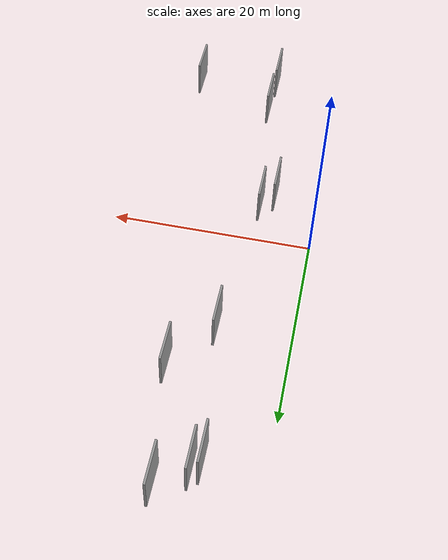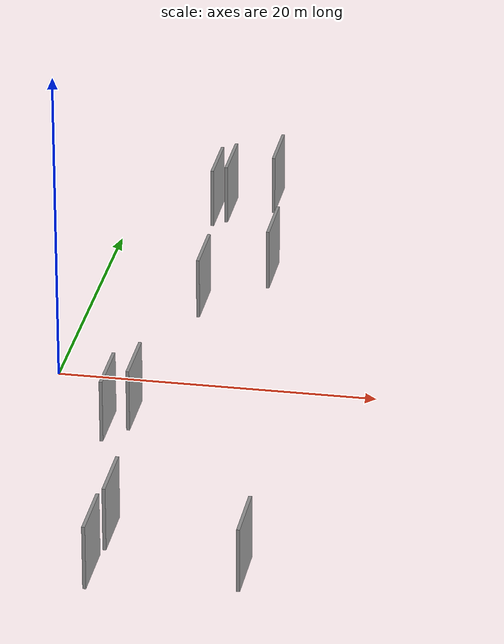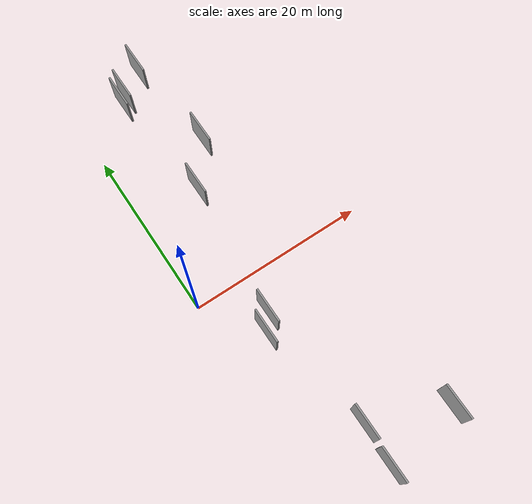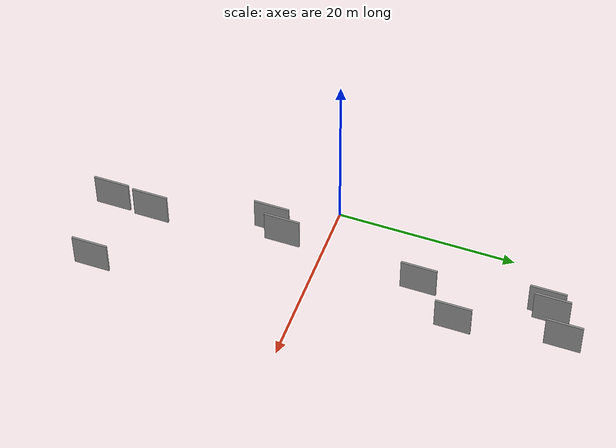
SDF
<sdf version="1.6">
 <world name="default">
  <scene>
   <sky><clouds><speed>12</speed></clouds></sky>
   <ambient>0.4 0.4 0.4 1</ambient>
   <background>0.7 0.7 0.7 1</background>
   <shadows>1</shadows>
  </scene>
  <gravity>0 0 -9.8066</gravity>
  <magnetic_field>6e-06 2.3e-05 -4.2e-05</magnetic_field>
  <physics default="0" name="default_physics" type="ode">
   <ode>
    <solver>
     <type>quick</type>
     <iters>10</iters>
     <sor>1.0</sor>
     <use_dynamic_moi_rescaling>0</use_dynamic_moi_rescaling>
    </solver>
    <constraints>
     <cfm>0</cfm>
     <erp>0.2</erp>
     <contact_max_correcting_vel>100</contact_max_correcting_vel>
     <contact_surface_layer>0.001</contact_surface_layer>
    </constraints>
   </ode>
   <max_step_size>0.004</max_step_size>
   <real_time_factor>1</real_time_factor>
   <real_time_update_rate>250</real_time_update_rate>
  </physics>
  <light name="sun" type="directional">
   <pose>0 0 10 0 0 0</pose>
   <diffuse>0.8 0.8 0.8 1</diffuse>
   <specular>0.2 0.2 0.2 1</specular>
   <attenuation>
    <range>1000</range>
    <constant>0.9</constant>
    <linear>0.01</linear>
    <quadratic>0.001</quadratic>
   </attenuation>
   <direction>-0.5 0.1 -0.9</direction>
  </light>
  <model name="grey_wall_1">
   <static>1</static>
   <pose>15.7030 -22.7188 0.0 0.000000 0.000000 1.570796</pose>
   <link name="link">
    <pose>0 0 2.00 0 0 0</pose>
    <collision name="collision"><geometry><box><size>4.00 0.2 4.00</size></box></geometry></collision>
    <visual name="visual">
     <cast_shadows>0</cast_shadows>
     <geometry><box><size>4.00 0.2 4.00</size></box></geometry>
     <material>
      <script>
       <uri>model://grey_wall/materials/scripts</uri>
       <uri>model://grey_wall/materials/textures</uri>
       <name>vrc/grey_wall</name>
      </script>
     </material>
    </visual>
   </link>
  </model>
  <model name="grey_wall_2">
   <static>1</static>
   <pose>5.5386 25.0089 0.0 0.000000 0.000000 1.570796</pose>
   <link name="link">
    <pose>0 0 2.00 0 0 0</pose>
    <collision name="collision"><geometry><box><size>4.00 0.2 4.00</size></box></geometry></collision>
    <visual name="visual">
     <cast_shadows>0</cast_shadows>
     <geometry><box><size>4.00 0.2 4.00</size></box></geometry>
     <material>
      <script>
       <uri>model://grey_wall/materials/scripts</uri>
       <uri>model://grey_wall/materials/textures</uri>
       <name>vrc/grey_wall</name>
      </script>
     </material>
    </visual>
   </link>
  </model>
  <model name="grey_wall_3">
   <static>1</static>
   <pose>4.4119 -6.2699 0.0 0.000000 0.000000 1.570796</pose>
   <link name="link">
    <pose>0 0 2.00 0 0 0</pose>
    <collision name="collision"><geometry><box><size>4.00 0.2 4.00</size></box></geometry></collision>
    <visual name="visual">
     <cast_shadows>0</cast_shadows>
     <geometry><box><size>4.00 0.2 4.00</size></box></geometry>
     <material>
      <script>
       <uri>model://grey_wall/materials/scripts</uri>
       <uri>model://grey_wall/materials/textures</uri>
       <name>vrc/grey_wall</name>
      </script>
     </material>
    </visual>
   </link>
  </model>
  <model name="grey_wall_4">
   <static>1</static>
   <pose>7.0491 -23.9071 0.0 0.000000 0.000000 1.570796</pose>
   <link name="link">
    <pose>0 0 2.00 0 0 0</pose>
    <collision name="collision"><geometry><box><size>4.00 0.2 4.00</size></box></geometry></collision>
    <visual name="visual">
     <cast_shadows>0</cast_shadows>
     <geometry><box><size>4.00 0.2 4.00</size></box></geometry>
     <material>
      <script>
       <uri>model://grey_wall/materials/scripts</uri>
       <uri>model://grey_wall/materials/textures</uri>
       <name>vrc/grey_wall</name>
      </script>
     </material>
    </visual>
   </link>
  </model>
  <model name="grey_wall_5">
   <static>1</static>
   <pose>5.7245 -4.6208 0.0 0.000000 0.000000 1.570796</pose>
   <link name="link">
    <pose>0 0 2.00 0 0 0</pose>
    <collision name="collision"><geometry><box><size>4.00 0.2 4.00</size></box></geometry></collision>
    <visual name="visual">
     <cast_shadows>0</cast_shadows>
     <geometry><box><size>4.00 0.2 4.00</size></box></geometry>
     <material>
      <script>
       <uri>model://grey_wall/materials/scripts</uri>
       <uri>model://grey_wall/materials/textures</uri>
       <name>vrc/grey_wall</name>
      </script>
     </material>
    </visual>
   </link>
  </model>
  <model name="grey_wall_6">
   <static>1</static>
   <pose>7.1010 11.3198 0.0 0.000000 0.000000 1.570796</pose>
   <link name="link">
    <pose>0 0 2.00 0 0 0</pose>
    <collision name="collision"><geometry><box><size>4.00 0.2 4.00</size></box></geometry></collision>
    <visual name="visual">
     <cast_shadows>0</cast_shadows>
     <geometry><box><size>4.00 0.2 4.00</size></box></geometry>
     <material>
      <script>
       <uri>model://grey_wall/materials/scripts</uri>
       <uri>model://grey_wall/materials/textures</uri>
       <name>vrc/grey_wall</name>
      </script>
     </material>
    </visual>
   </link>
  </model>
  <model name="grey_wall_7">
   <static>1</static>
   <pose>6.3560 25.7310 0.0 0.000000 0.000000 1.570796</pose>
   <link name="link">
    <pose>0 0 2.00 0 0 0</pose>
    <collision name="collision"><geometry><box><size>4.00 0.2 4.00</size></box></geometry></collision>
    <visual name="visual">
     <cast_shadows>0</cast_shadows>
     <geometry><box><size>4.00 0.2 4.00</size></box></geometry>
     <material>
      <script>
       <uri>model://grey_wall/materials/scripts</uri>
       <uri>model://grey_wall/materials/textures</uri>
       <name>vrc/grey_wall</name>
      </script>
     </material>
    </visual>
   </link>
  </model>
  <model name="grey_wall_8">
   <static>1</static>
   <pose>7.2765 -19.3247 0.0 0.000000 0.000000 1.570796</pose>
   <link name="link">
    <pose>0 0 2.00 0 0 0</pose>
    <collision name="collision"><geometry><box><size>4.00 0.2 4.00</size></box></geometry></collision>
    <visual name="visual">
     <cast_shadows>0</cast_shadows>
     <geometry><box><size>4.00 0.2 4.00</size></box></geometry>
     <material>
      <script>
       <uri>model://grey_wall/materials/scripts</uri>
       <uri>model://grey_wall/materials/textures</uri>
       <name>vrc/grey_wall</name>
      </script>
     </material>
    </visual>
   </link>
  </model>
  <model name="grey_wall_9">
   <static>1</static>
   <pose>10.7771 16.2704 0.0 0.000000 0.000000 1.570796</pose>
   <link name="link">
    <pose>0 0 2.00 0 0 0</pose>
    <collision name="collision"><geometry><box><size>4.00 0.2 4.00</size></box></geometry></collision>
    <visual name="visual">
     <cast_shadows>0</cast_shadows>
     <geometry><box><size>4.00 0.2 4.00</size></box></geometry>
     <material>
      <script>
       <uri>model://grey_wall/materials/scripts</uri>
       <uri>model://grey_wall/materials/textures</uri>
       <name>vrc/grey_wall</name>
      </script>
     </material>
    </visual>
   </link>
  </model>
  <model name="grey_wall_10">
   <static>1</static>
   <pose>9.2142 27.7658 0.0 0.000000 0.000000 1.570796</pose>
   <link name="link">
    <pose>0 0 2.00 0 0 0</pose>
    <collision name="collision"><geometry><box><size>4.00 0.2 4.00</size></box></geometry></collision>
    <visual name="visual">
     <cast_shadows>0</cast_shadows>
     <geometry><box><size>4.00 0.2 4.00</size></box></geometry>
     <material>
      <script>
       <uri>model://grey_wall/materials/scripts</uri>
       <uri>model://grey_wall/materials/textures</uri>
       <name>vrc/grey_wall</name>
      </script>
     </material>
    </visual>
   </link>
  </model>
 </world>
</sdf>
